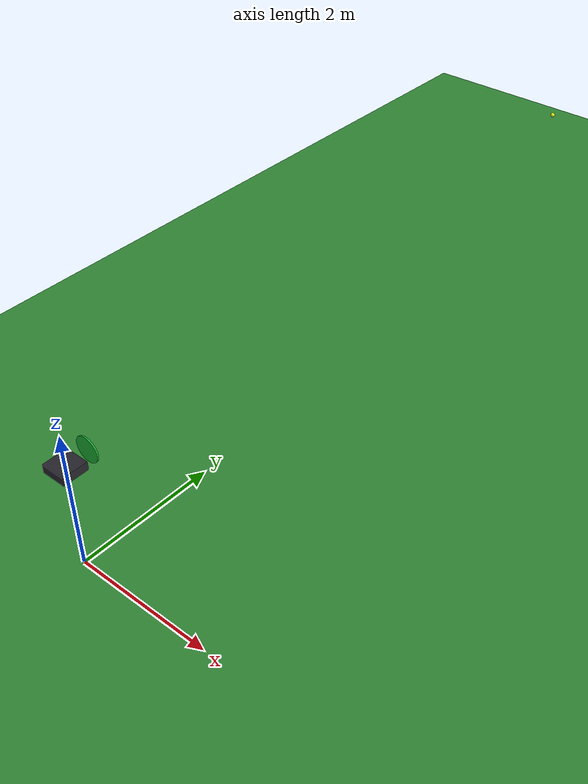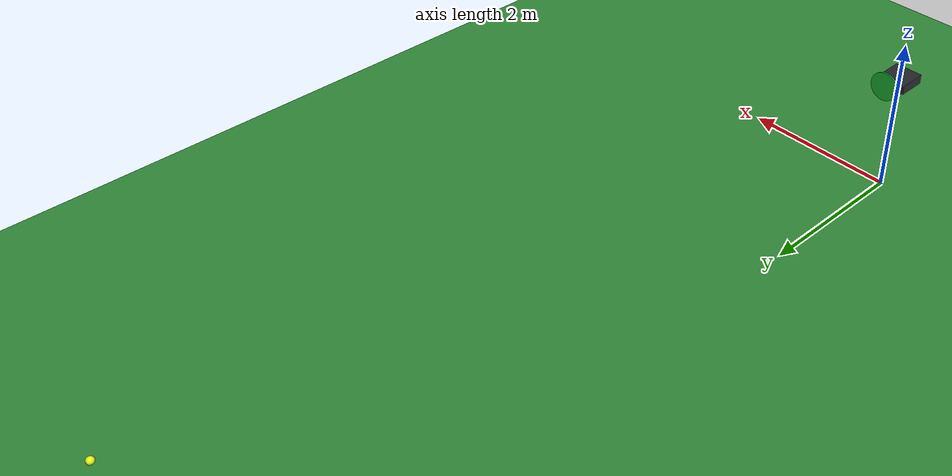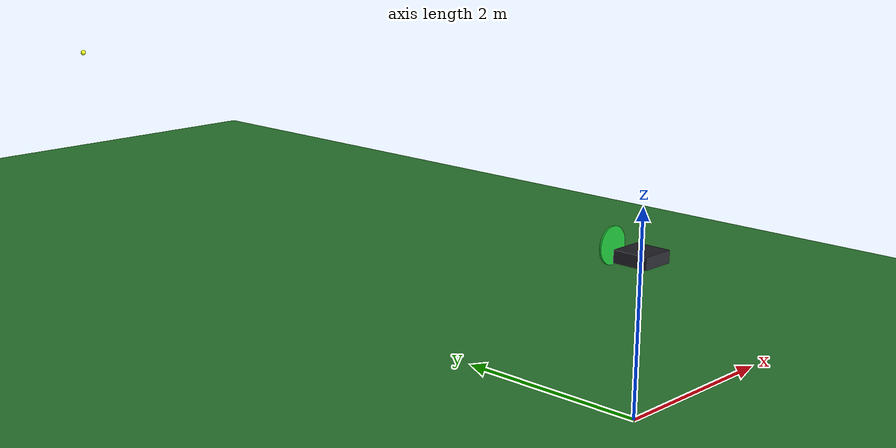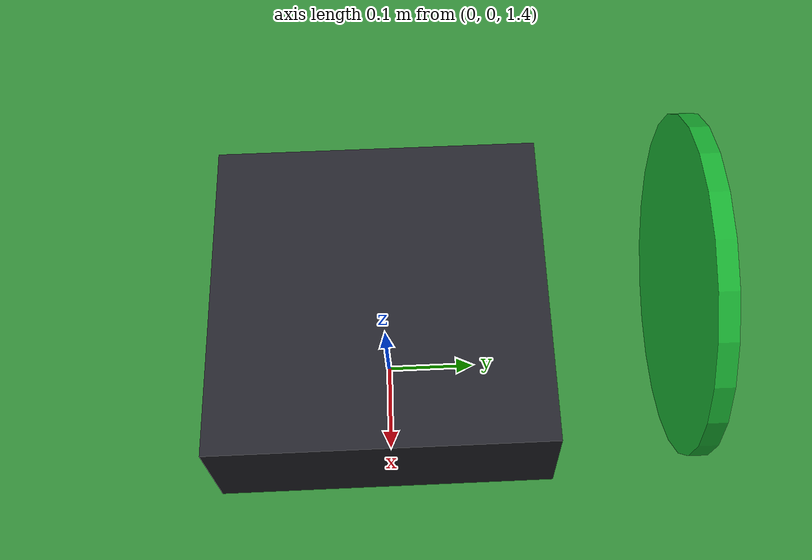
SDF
<?xml version="1.0" ?>
<sdf version="1.8">
  <world name="dynamic_capture">
    <gravity>0 0 -9.81</gravity>
    <magnetic_field>6e-06 2.3e-05 -4.2e-05</magnetic_field>
    <physics name="capture_physics" type="ode">
      <max_step_size>0.004</max_step_size>
      <real_time_factor>0</real_time_factor>
      <real_time_update_rate>0</real_time_update_rate>
    </physics>

    <plugin filename="gz-sim-physics-system" name="gz::sim::systems::Physics"/>
    <plugin filename="gz-sim-sensors-system" name="gz::sim::systems::Sensors">
      <render_engine>ogre2</render_engine>
    </plugin>
    <plugin filename="gz-sim-user-commands-system" name="gz::sim::systems::UserCommands"/>
    <plugin filename="gz-sim-scene-broadcaster-system" name="gz::sim::systems::SceneBroadcaster"/>
    <plugin filename="gz-sim-contact-system" name="gz::sim::systems::Contact"/>

    <scene>
      <ambient>0.6 0.7 0.8 1</ambient>
      <background>0.45 0.65 0.85 1</background>
      <shadows>false</shadows>
    </scene>

    <light name="sun" type="directional">
      <cast_shadows>false</cast_shadows>
      <pose>0 0 10 0 0 0</pose>
      <diffuse>0.9 0.9 0.8 1</diffuse>
      <specular>0.3 0.3 0.3 1</specular>
      <attenuation>
        <range>1000</range>
        <constant>0.9</constant>
        <linear>0.01</linear>
        <quadratic>0.001</quadratic>
      </attenuation>
      <direction>-0.3 0.2 -0.9</direction>
    </light>

    <model name="ground_plane">
      <static>true</static>
      <link name="link">
        <collision name="collision">
          <geometry>
            <plane>
              <normal>0 0 1</normal>
              <size>100 100</size>
            </plane>
          </geometry>
        </collision>
        <visual name="visual">
          <geometry>
            <plane>
              <normal>0 0 1</normal>
              <size>100 100</size>
            </plane>
          </geometry>
          <material>
            <ambient>0.8 0.8 0.8 1</ambient>
            <diffuse>0.8 0.8 0.8 1</diffuse>
          </material>
        </visual>
      </link>
    </model>

    <model name="court">
      <static>true</static>
      <pose>0 10 0 0 0 0</pose>
      <link name="link">
        <collision name="collision">
          <geometry>
            <box><size>16 28 0.02</size></box>
          </geometry>
        </collision>
        <visual name="visual">
          <geometry>
            <box><size>16 28 0.02</size></box>
          </geometry>
          <material>
            <ambient>0.15 0.45 0.18 1</ambient>
            <diffuse>0.2 0.55 0.22 1</diffuse>
          </material>
        </visual>
      </link>
    </model>

    <include>
      <uri>model://tennis_ball</uri>
      <name>tennis_ball</name>
      <pose>0.4 9.5 2.4 0 0 0</pose>
    </include>
    <include>
      <uri>model://catcher_drone</uri>
      <name>catcher_drone</name>
      <pose>0 0 1.55 0 0 1.5708</pose>
    </include>
  </world>
</sdf>

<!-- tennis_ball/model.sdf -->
<sdf version="1.8">
  <model name="tennis_ball">
    <!-- ITF tennis ball: ~57 g, diameter 67 mm, Cd ~0.55 -->
    <pose>0 0 0.034 0 0 0</pose>
    <link name="ball">
      <inertial>
        <mass>0.057</mass>
        <inertia>
          <ixx>2.55e-05</ixx>
          <iyy>2.55e-05</iyy>
          <izz>2.55e-05</izz>
        </inertia>
      </inertial>
      <collision name="collision">
        <geometry>
          <sphere><radius>0.0335</radius></sphere>
        </geometry>
        <surface>
          <bounce>
            <restitution_coefficient>0.75</restitution_coefficient>
            <threshold>0.05</threshold>
          </bounce>
          <friction>
            <ode>
              <mu>0.6</mu>
              <mu2>0.6</mu2>
            </ode>
          </friction>
          <contact>
            <collide_bitmask>0x02</collide_bitmask>
          </contact>
        </surface>
      </collision>
      <visual name="visual">
        <geometry>
          <sphere><radius>0.0335</radius></sphere>
        </geometry>
        <material>
          <ambient>0.85 0.92 0.12 1</ambient>
          <diffuse>0.90 0.95 0.10 1</diffuse>
          <specular>0.4 0.4 0.3 1</specular>
          <emissive>0.15 0.18 0.02 1</emissive>
        </material>
      </visual>
    </link>
  </model>
</sdf>

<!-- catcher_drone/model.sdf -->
<sdf version="1.8">
  <model name="catcher_drone">
    <pose>0 0 1.55 0 0 1.5708</pose>
    <link name="base_link">
      <inertial>
        <mass>1.4</mass>
        <inertia>
          <ixx>0.012</ixx>
          <iyy>0.012</iyy>
          <izz>0.021</izz>
        </inertia>
      </inertial>
      <collision name="collision">
        <geometry>
          <box><size>0.35 0.35 0.12</size></box>
        </geometry>
        <surface>
          <contact>
            <collide_bitmask>0x01</collide_bitmask>
          </contact>
        </surface>
      </collision>
      <visual name="visual">
        <geometry>
          <box><size>0.35 0.35 0.12</size></box>
        </geometry>
        <material>
          <ambient>0.1 0.1 0.12 1</ambient>
          <diffuse>0.15 0.15 0.18 1</diffuse>
        </material>
      </visual>
      <!-- Catch net, 0.32 m forward of CoM (matches InterceptPlanner.catch_offset). -->
      <visual name="net">
        <pose>0.32 0 0.04 0 1.5708 0</pose>
        <geometry>
          <cylinder>
            <radius>0.18</radius>
            <length>0.02</length>
          </cylinder>
        </geometry>
        <material>
          <ambient>0.05 0.55 0.15 1</ambient>
          <diffuse>0.1 0.7 0.2 1</diffuse>
        </material>
      </visual>
      <!-- hfov = 2*atan(320/500) so pinhole fx matches capture_sim.Camera -->
      <sensor name="front_camera" type="camera">
        <pose>0.08 0 0 0 0 0</pose>
        <always_on>true</always_on>
        <update_rate>30</update_rate>
        <topic>catcher/image</topic>
        <camera name="cam">
          <horizontal_fov>1.142</horizontal_fov>
          <image>
            <width>640</width>
            <height>480</height>
            <format>R8G8B8</format>
          </image>
          <clip>
            <near>0.08</near>
            <far>40</far>
          </clip>
        </camera>
      </sensor>
    </link>
  </model>
</sdf>
